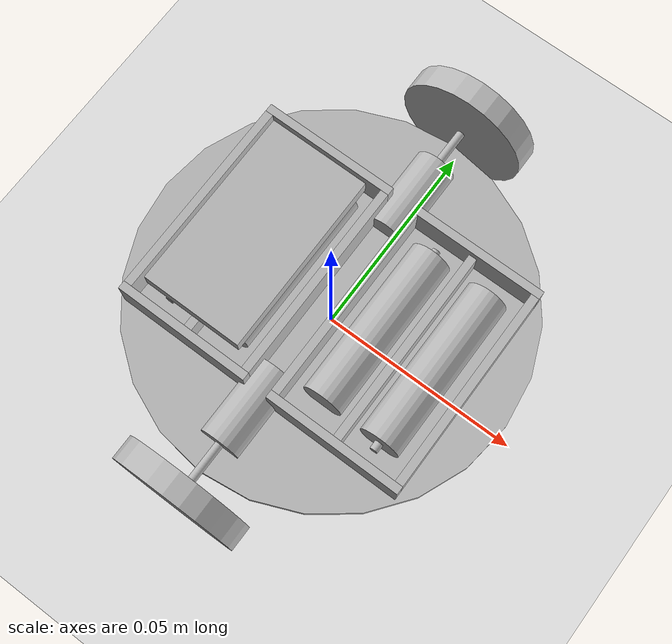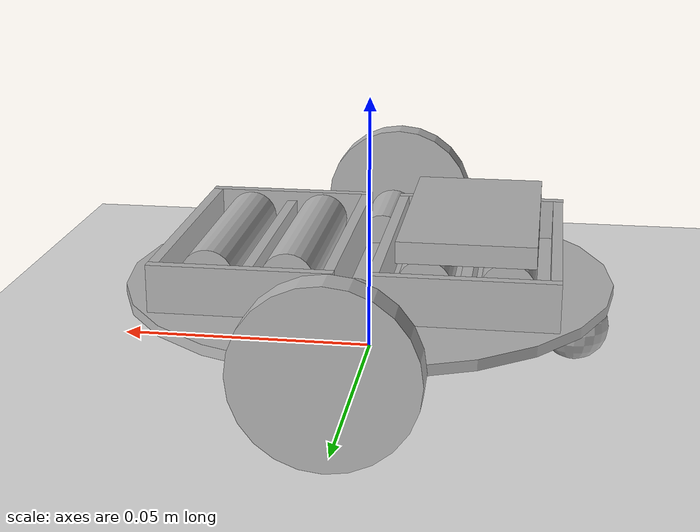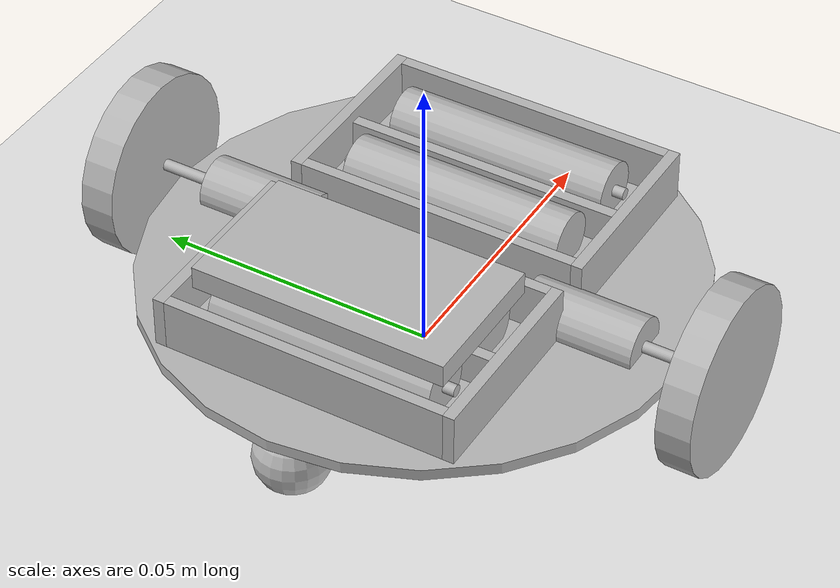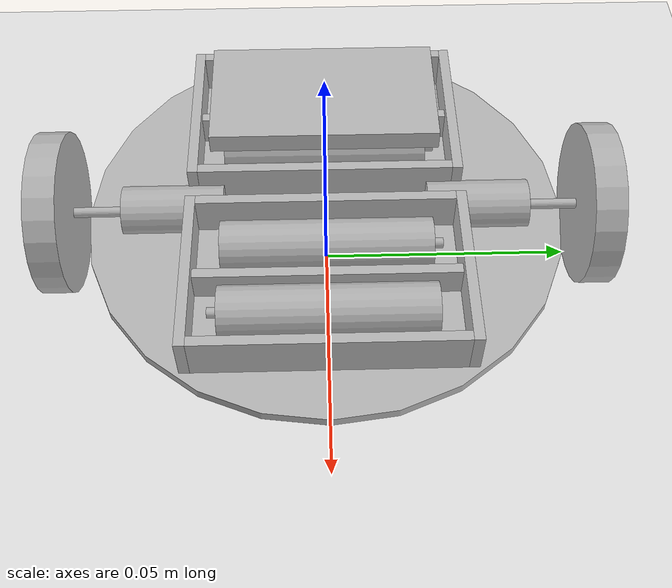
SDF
<?xml version="1.0"?>
<sdf version="1.10">
    <world name="race_tracks_world">
        <physics name="default_physics" type="dart">
            <max_step_size>0.001</max_step_size>
            <real_time_factor>1</real_time_factor>
            <real_time_update_rate>1000</real_time_update_rate>
        </physics>

        <plugin
            filename="gz-sim-physics-system"
            name="gz::sim::systems::Physics">
        </plugin>
        <plugin
            filename="gz-sim-sensors-system"
            name="gz::sim::systems::Sensors">
        </plugin>
        <plugin
            filename="gz-sim-scene-broadcaster-system"
            name="gz::sim::systems::SceneBroadcaster">
        </plugin>
        <plugin
            filename="gz-sim-user-commands-system"
            name="gz::sim::systems::UserCommands">
        </plugin>

        <gui>
        <camera name="observation_camera">
                <view_controller>orbit</view_controller>
                <projection_type>perspective</projection_type>
				<track_visual>
					<name>3pi_robot</name>
					<static>1</static>
					<xyz>-0.01 0 2</xyz>
                    <inherit_yaw>0</inherit_yaw>
				</track_visual>
			</camera>
		</gui>

		<light type="directional" name="sun">
            <cast_shadows>0</cast_shadows>
            <pose>0 0 10 0 0 0</pose>
            <diffuse>0.8 0.8 0.8 1</diffuse>
            <specular>0.2 0.2 0.2 1</specular>
            <attenuation>
                <range>1000</range>
                <constant>0.9</constant>
                <linear>0.01</linear>
                <quadratic>0.001</quadratic>
            </attenuation>
            <direction>-0.5 0.1 -0.9</direction>
        </light>

        <include>
            <uri>model://colored_ground_plane</uri>
        </include>

        <include>
            <uri>model://3pi_robot</uri>
        </include>

        <model name="top_camera">
                <static>1</static>
                <gravity>0</gravity>
                <kinematic>1</kinematic>
                <pose>0 0 0 0 0 0</pose>
                <link name="top_camera_link">
                        <inertial>
                                <mass>1e-12</mass>
                        </inertial>
                        <self_collide>0</self_collide>
                        <sensor name="top_camera" type="camera">
                                <camera>
                                        <horizontal_fov>2.694395</horizontal_fov>
                                        <vertical_fov>2.694395</vertical_fov>
                                        <image>
                                                <height>100</height>
                                                <width>100</width>
                                                <format>R8G8B8</format>
                                        </image>
                                        <clip>
                                                <near>0.001</near>
                                                <far>100.</far>
                                        </clip>
                                </camera>
                                <always_on>1</always_on>
                                <update_rate>30</update_rate>
                                <visualize>1</visualize>
                                <topic>/world/race_tracks_world/top_camera</topic>
                        </sensor>
                </link>
         </model>

    </world>
</sdf>

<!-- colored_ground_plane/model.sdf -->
<sdf version="1.11">
	<model name="colored_ground_plane">
		<static>1</static>
		<pose>0 0 0 0 0 0</pose>
		<link name="link">
			<collision name="collision">
				<geometry>
					<plane>
						<normal>0 0 1</normal>
						<size>100 100</size>
					</plane>
				</geometry>
                                <surface><friction><ode>
                                <mu>10000000</mu>
                                <mu2>10000000</mu2>
                                </ode></friction></surface>
			</collision>
			<visual name="visual">
				<geometry>
					<plane>
						<normal>0 0 1</normal>
						<size>100 100</size>
					</plane>
				</geometry>
				<material>
					<ambient>0.1 0.1 0.1 1</ambient>
					<diffuse>0.9 0.9 0.9 1</diffuse>
					<specular>0.1 0.1 0.1 1</specular>
					<pbr>
						<metal>
	        				<albedo_map>tracks/circles.png</albedo_map>
						</metal>
					</pbr>
				</material>
			</visual>
		</link>
	</model>

</sdf>

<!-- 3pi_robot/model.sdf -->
<sdf version="1.11">
	<model name="3pi_robot">
		<static>0</static>
		<pose>0 0 0 0 0 0</pose>
		<!-- LINKS - LINKS - LINKS -->
		<link name="blade_link">
			<pose>0 0 0.013 0 0 0</pose>
			<inertial>
				<mass>0.005</mass>
				<pose>0 0 0.001 0 0 0</pose>
				<inertia>
					<ixx>2.92e-06</ixx>
					<ixy>0</ixy>
					<ixz>0</ixz>
					<iyy>2.92e-06</iyy>
					<iyz>0</iyz>
					<izz>5.52e-06</izz>
				</inertia>
			</inertial>
			<self_collide>0</self_collide>
			<enable_wind>0</enable_wind>
			<kinematic>0</kinematic>
			<gravity>1</gravity>
			<visual name="body_visual">
				<pose>0 0 0.001 0 0 0</pose>
				<geometry>
					<cylinder>
						<radius>0.047</radius>
						<length>0.002</length>
					</cylinder>
				</geometry>
				<transparency>0</transparency>
				<cast_shadows>1</cast_shadows>
			</visual>
		</link>
		<link name="battery_b_lr_link">
			<pose>-0.0275 0.02 0.02 1.570796 0 0</pose>
			<inertial>
				<mass>0.00756</mass>
				<pose>0 0 0.02 0 0 0</pose>
				<inertia>
					<ixx>1.06e-06</ixx>
					<ixy>0</ixy>
					<ixz>0</ixz>
					<iyy>1.06e-06</iyy>
					<iyz>0</iyz>
					<izz>9.5e-08</izz>
				</inertia>
			</inertial>
			<self_collide>0</self_collide>
			<enable_wind>0</enable_wind>
			<kinematic>0</kinematic>
			<gravity>1</gravity>
			<visual name="body_visual">
				<pose>0 0 0.02 0 0 0</pose>
				<geometry>
					<cylinder>
						<radius>0.005</radius>
						<length>0.04</length>
					</cylinder>
				</geometry>
				<transparency>0</transparency>
				<cast_shadows>1</cast_shadows>
			</visual>
			<visual name="head_visual">
				<pose>0 0 0.041 0 0 0</pose>
				<geometry>
					<cylinder>
						<radius>0.001</radius>
						<length>0.002</length>
					</cylinder>
				</geometry>
				<transparency>0</transparency>
				<cast_shadows>1</cast_shadows>
			</visual>
		</link>
		<link name="battery_b_rl_link">
			<pose>-0.0125 -0.02 0.02 -1.570796 0 0</pose>
			<inertial>
				<mass>0.00756</mass>
				<pose>0 0 0.02 0 0 0</pose>
				<inertia>
					<ixx>1.06e-06</ixx>
					<ixy>0</ixy>
					<ixz>0</ixz>
					<iyy>1.06e-06</iyy>
					<iyz>0</iyz>
					<izz>9.5e-08</izz>
				</inertia>
			</inertial>
			<self_collide>0</self_collide>
			<enable_wind>0</enable_wind>
			<kinematic>0</kinematic>
			<gravity>1</gravity>
			<visual name="body_visual">
				<pose>0 0 0.02 0 0 0</pose>
				<geometry>
					<cylinder>
						<radius>0.005</radius>
						<length>0.04</length>
					</cylinder>
				</geometry>
				<transparency>0</transparency>
				<cast_shadows>1</cast_shadows>
			</visual>
			<visual name="head_visual">
				<pose>0 0 0.041 0 0 0</pose>
				<geometry>
					<cylinder>
						<radius>0.001</radius>
						<length>0.002</length>
					</cylinder>
				</geometry>
				<transparency>0</transparency>
				<cast_shadows>1</cast_shadows>
			</visual>
		</link>
		<link name="box_b_link">
			<pose>-0.02 0 0.014 0 0 1.570796</pose>
			<inertial>
				<mass>0.00101</mass>
				<pose>0 0 0.005 0 0 0</pose>
				<inertia>
					<ixx>1.06e-07</ixx>
					<ixy>0</ixy>
					<ixz>0</ixz>
					<iyy>2.19e-07</iyy>
					<iyz>0</iyz>
					<izz>3.08e-07</izz>
				</inertia>
			</inertial>
			<self_collide>0</self_collide>
			<enable_wind>0</enable_wind>
			<kinematic>0</kinematic>
			<gravity>1</gravity>
			<visual name="front_visual">
				<pose>0 0.016 0.005 0 0 0</pose>
				<geometry>
					<box>
						<size>0.05 0.002 0.01</size>
					</box>
				</geometry>
				<transparency>0</transparency>
				<cast_shadows>1</cast_shadows>
			</visual>
			<visual name="back_visual">
				<pose>0 -0.016 0.005 0 0 0</pose>
				<geometry>
					<box>
						<size>0.05 0.002 0.01</size>
					</box>
				</geometry>
				<transparency>0</transparency>
				<cast_shadows>1</cast_shadows>
			</visual>
			<visual name="bottom_visual">
				<pose>0 0 0.001 0 0 0</pose>
				<geometry>
					<box>
						<size>0.05 0.03 0.002</size>
					</box>
				</geometry>
				<transparency>0</transparency>
				<cast_shadows>1</cast_shadows>
			</visual>
			<visual name="left_visual">
				<pose>-0.026 0 0.005 0 0 0</pose>
				<geometry>
					<box>
						<size>0.002 0.034 0.01</size>
					</box>
				</geometry>
				<transparency>0</transparency>
				<cast_shadows>1</cast_shadows>
			</visual>
			<visual name="middle_visual">
				<pose>0 0 0.005 0 0 0</pose>
				<geometry>
					<box>
						<size>0.05 0.002 0.006</size>
					</box>
				</geometry>
				<transparency>0</transparency>
				<cast_shadows>1</cast_shadows>
			</visual>
			<visual name="right_visual">
				<pose>0.026 0 0.005 0 0 0</pose>
				<geometry>
					<box>
						<size>0.002 0.034 0.01</size>
					</box>
				</geometry>
				<transparency>0</transparency>
				<cast_shadows>1</cast_shadows>
			</visual>
		</link>
		<link name="battery_f_lr_link">
			<pose>0.0275 0.02 0.02 1.570796 0 0</pose>
			<inertial>
				<mass>0.00756</mass>
				<pose>0 0 0.02 0 0 0</pose>
				<inertia>
					<ixx>1.06e-06</ixx>
					<ixy>0</ixy>
					<ixz>0</ixz>
					<iyy>1.06e-06</iyy>
					<iyz>0</iyz>
					<izz>9.5e-08</izz>
				</inertia>
			</inertial>
			<self_collide>0</self_collide>
			<enable_wind>0</enable_wind>
			<kinematic>0</kinematic>
			<gravity>1</gravity>
			<visual name="body_visual">
				<pose>0 0 0.02 0 0 0</pose>
				<geometry>
					<cylinder>
						<radius>0.005</radius>
						<length>0.04</length>
					</cylinder>
				</geometry>
				<transparency>0</transparency>
				<cast_shadows>1</cast_shadows>
			</visual>
			<visual name="head_visual">
				<pose>0 0 0.041 0 0 0</pose>
				<geometry>
					<cylinder>
						<radius>0.001</radius>
						<length>0.002</length>
					</cylinder>
				</geometry>
				<transparency>0</transparency>
				<cast_shadows>1</cast_shadows>
			</visual>
		</link>
		<link name="battery_f_rl_link">
			<pose>0.0125 -0.02 0.02 -1.570796 0 0</pose>
			<inertial>
				<mass>0.00756</mass>
				<pose>0 0 0.02 0 0 0</pose>
				<inertia>
					<ixx>1.06e-06</ixx>
					<ixy>0</ixy>
					<ixz>0</ixz>
					<iyy>1.06e-06</iyy>
					<iyz>0</iyz>
					<izz>9.5e-08</izz>
				</inertia>
			</inertial>
			<self_collide>0</self_collide>
			<enable_wind>0</enable_wind>
			<kinematic>0</kinematic>
			<gravity>1</gravity>
			<visual name="body_visual">
				<pose>0 0 0.02 0 0 0</pose>
				<geometry>
					<cylinder>
						<radius>0.005</radius>
						<length>0.04</length>
					</cylinder>
				</geometry>
				<transparency>0</transparency>
				<cast_shadows>1</cast_shadows>
			</visual>
			<visual name="head_visual">
				<pose>0 0 0.041 0 0 0</pose>
				<geometry>
					<cylinder>
						<radius>0.001</radius>
						<length>0.002</length>
					</cylinder>
				</geometry>
				<transparency>0</transparency>
				<cast_shadows>1</cast_shadows>
			</visual>
		</link>
		<link name="box_f_link">
			<pose>0.02 0 0.014 0 0 -1.570796</pose>
			<inertial>
				<mass>0.00101</mass>
				<pose>0 0 0.005 0 0 0</pose>
				<inertia>
					<ixx>1.06e-07</ixx>
					<ixy>0</ixy>
					<ixz>0</ixz>
					<iyy>2.19e-07</iyy>
					<iyz>0</iyz>
					<izz>3.08e-07</izz>
				</inertia>
			</inertial>
			<self_collide>0</self_collide>
			<enable_wind>0</enable_wind>
			<kinematic>0</kinematic>
			<gravity>1</gravity>
			<visual name="right_visual">
				<pose>0.026 0 0.005 0 0 0</pose>
				<geometry>
					<box>
						<size>0.002 0.034 0.01</size>
					</box>
				</geometry>
				<transparency>0</transparency>
				<cast_shadows>1</cast_shadows>
			</visual>
			<visual name="front_visual">
				<pose>0 0.016 0.005 0 0 0</pose>
				<geometry>
					<box>
						<size>0.05 0.002 0.01</size>
					</box>
				</geometry>
				<transparency>0</transparency>
				<cast_shadows>1</cast_shadows>
			</visual>
			<visual name="bottom_visual">
				<pose>0 0 0.001 0 0 0</pose>
				<geometry>
					<box>
						<size>0.05 0.03 0.002</size>
					</box>
				</geometry>
				<transparency>0</transparency>
				<cast_shadows>1</cast_shadows>
			</visual>
			<visual name="middle_visual">
				<pose>0 0 0.005 0 0 0</pose>
				<geometry>
					<box>
						<size>0.05 0.002 0.006</size>
					</box>
				</geometry>
				<transparency>0</transparency>
				<cast_shadows>1</cast_shadows>
			</visual>
			<visual name="left_visual">
				<pose>-0.026 0 0.005 0 0 0</pose>
				<geometry>
					<box>
						<size>0.002 0.034 0.01</size>
					</box>
				</geometry>
				<transparency>0</transparency>
				<cast_shadows>1</cast_shadows>
			</visual>
			<visual name="back_visual">
				<pose>0 -0.016 0.005 0 0 0</pose>
				<geometry>
					<box>
						<size>0.05 0.002 0.01</size>
					</box>
				</geometry>
				<transparency>0</transparency>
				<cast_shadows>1</cast_shadows>
			</visual>
		</link>
		<link name="caster_link">
			<pose>-0.04 0 0 0 0 0</pose>
			<inertial>
				<mass>0.00144</mass>
				<pose>0 0 0.0065 0 0 0</pose>
				<inertia>
					<ixx>2.4e-08</ixx>
					<ixy>0</ixy>
					<ixz>0</ixz>
					<iyy>2.4e-08</iyy>
					<iyz>0</iyz>
					<izz>2.4e-08</izz>
				</inertia>
			</inertial>
			<self_collide>0</self_collide>
			<enable_wind>0</enable_wind>
			<kinematic>0</kinematic>
			<gravity>1</gravity>
			<visual name="body_visual">
				<pose>0 0 0.0065 0 0 0</pose>
				<geometry>
					<sphere>
						<radius>0.0065</radius>
					</sphere>
				</geometry>
				<transparency>0</transparency>
				<cast_shadows>1</cast_shadows>
			</visual>
			<collision name="body_collision">
				<laser_retro>0</laser_retro>
				<max_contacts>10</max_contacts>
				<pose>0 0 0.0065 0 0 0</pose>
				<geometry>
					<sphere>
						<radius>0.0065</radius>
					</sphere>
				</geometry>
				<surface>
					<friction>
						<ode>
							<mu>1</mu>
							<mu2>0.5</mu2>
							<fdir1>0 0 0</fdir1>
							<slip1>0</slip1>
							<slip2>0</slip2>
						</ode>
						<torsional>
							<coefficient>0.75</coefficient>
							<use_patch_radius>0</use_patch_radius>
							<surface_radius>0.0065</surface_radius>
							<ode>
								<slip>0</slip>
							</ode>
						</torsional>
					</friction>
					<contact>
						<ode>
							<soft_cfm>0</soft_cfm>
							<soft_erp>0.2</soft_erp>
							<kp>1e+13</kp>
							<kd>1</kd>
							<max_vel>1</max_vel>
							<min_depth>0.001</min_depth>
						</ode>
					</contact>
				</surface>
			</collision>
		</link>
		<link name="wheel_l_link">
			<pose>0 -0.05 0.016 1.570796 0 0</pose>
			<inertial>
				<mass>0.00311</mass>
				<pose>0 0 0.003 0 0 0</pose>
				<inertia>
					<ixx>2.08e-07</ixx>
					<ixy>0</ixy>
					<ixz>0</ixz>
					<iyy>2.08e-07</iyy>
					<iyz>0</iyz>
					<izz>3.98e-07</izz>
				</inertia>
			</inertial>
			<self_collide>0</self_collide>
			<enable_wind>0</enable_wind>
			<kinematic>0</kinematic>
			<gravity>1</gravity>
			<visual name="body_visual">
				<pose>0 0 0.003 0 0 0</pose>
				<geometry>
					<cylinder>
						<radius>0.016</radius>
						<length>0.006</length>
					</cylinder>
				</geometry>
				<transparency>0</transparency>
				<cast_shadows>1</cast_shadows>
			</visual>
			<collision name="body_collision">
				<laser_retro>0</laser_retro>
				<max_contacts>10</max_contacts>
				<pose>0 0 0.003 0 0 0</pose>
				<geometry>
					<cylinder>
						<radius>0.016</radius>
						<length>0.006</length>
					</cylinder>
				</geometry>
				<surface>
					<friction>
						<ode>
							<mu>20000000</mu>
							<mu2>10000000</mu2>
							<slip1>0</slip1>
							<slip2>0</slip2>
						</ode>
						<torsional>
							<coefficient>15</coefficient>
							<use_patch_radius>0</use_patch_radius>
							<surface_radius>0.016</surface_radius>
							<ode>
								<slip>0</slip>
							</ode>
						</torsional>
					</friction>
					<contact>
						<ode>
							<soft_cfm>0</soft_cfm>
							<soft_erp>0.2</soft_erp>
							<kp>1e+13</kp>
							<kd>1</kd>
							<max_vel>1</max_vel>
							<min_depth>0.001</min_depth>
						</ode>
					</contact>
				</surface>
			</collision>
		</link>
		<link name="motor_l_link">
			<pose>0 -0.02 0.016 1.570796 0 0</pose>
			<inertial>
				<mass>0.03158</mass>
				<pose>0 0 0.01 0 0 0</pose>
				<inertia>
					<ixx>1.25e-06</ixx>
					<ixy>0</ixy>
					<ixz>0</ixz>
					<iyy>1.25e-06</iyy>
					<iyz>0</iyz>
					<izz>3.95e-07</izz>
				</inertia>
			</inertial>
			<self_collide>0</self_collide>
			<enable_wind>0</enable_wind>
			<kinematic>0</kinematic>
			<gravity>1</gravity>
			<visual name="body_visual">
				<pose>0 0 0.01 0 0 0</pose>
				<geometry>
					<cylinder>
						<radius>0.005</radius>
						<length>0.02</length>
					</cylinder>
				</geometry>
				<transparency>0</transparency>
				<cast_shadows>1</cast_shadows>
			</visual>
			<visual name="axis_visual">
				<pose>0 0 0.025 0 0 0</pose>
				<geometry>
					<cylinder>
						<radius>0.001</radius>
						<length>0.01</length>
					</cylinder>
				</geometry>
				<transparency>0</transparency>
				<cast_shadows>1</cast_shadows>
			</visual>
		</link>
		<link name="wheel_r_link">
			<pose>0 0.05 0.016 -1.570796 0 0</pose>
			<inertial>
				<mass>0.00311</mass>
				<pose>0 0 0.003 0 0 0</pose>
				<inertia>
					<ixx>2.08e-07</ixx>
					<ixy>0</ixy>
					<ixz>0</ixz>
					<iyy>2.08e-07</iyy>
					<iyz>0</iyz>
					<izz>3.98e-07</izz>
				</inertia>
			</inertial>
			<self_collide>0</self_collide>
			<enable_wind>0</enable_wind>
			<kinematic>0</kinematic>
			<gravity>1</gravity>
			<visual name="body_visual">
				<pose>0 0 0.003 0 0 0</pose>
				<geometry>
					<cylinder>
						<radius>0.016</radius>
						<length>0.006</length>
					</cylinder>
				</geometry>
				<transparency>0</transparency>
				<cast_shadows>1</cast_shadows>
			</visual>
			<collision name="body_collision">
				<laser_retro>0</laser_retro>
				<max_contacts>10</max_contacts>
				<pose>0 0 0.003 0 0 0</pose>
				<geometry>
					<cylinder>
						<radius>0.016</radius>
						<length>0.006</length>
					</cylinder>
				</geometry>
				<surface>
					<friction>
						<ode>
							<mu>2000000</mu>
							<mu2>1000000</mu2>
							<slip1>0</slip1>
							<slip2>0</slip2>
						</ode>
						<torsional>
							<coefficient>15</coefficient>
							<use_patch_radius>0</use_patch_radius>
							<surface_radius>0.016</surface_radius>
							<ode>
								<slip>0</slip>
							</ode>
						</torsional>
					</friction>
					<contact>
						<ode>
							<soft_cfm>0</soft_cfm>
							<soft_erp>0.2</soft_erp>
							<kp>1e+13</kp>
							<kd>1</kd>
							<max_vel>1</max_vel>
							<min_depth>0.001</min_depth>
						</ode>
					</contact>
				</surface>
			</collision>
		</link>
		<link name="motor_r_link">
			<pose>0 0.02 0.016 -1.570796 0 0</pose>
			<inertial>
				<mass>0.03158</mass>
				<pose>0 0 0.01 0 0 0</pose>
				<inertia>
					<ixx>1.25e-06</ixx>
					<ixy>0</ixy>
					<ixz>0</ixz>
					<iyy>1.25e-06</iyy>
					<iyz>0</iyz>
					<izz>3.95e-07</izz>
				</inertia>
			</inertial>
			<self_collide>0</self_collide>
			<enable_wind>0</enable_wind>
			<kinematic>0</kinematic>
			<gravity>1</gravity>
			<visual name="body_visual">
				<pose>0 0 0.01 0 0 0</pose>
				<geometry>
					<cylinder>
						<radius>0.005</radius>
						<length>0.02</length>
					</cylinder>
				</geometry>
				<transparency>0</transparency>
				<cast_shadows>1</cast_shadows>
			</visual>
			<visual name="axis_visual">
				<pose>0 0 0.025 0 0 0</pose>
				<geometry>
					<cylinder>
						<radius>0.001</radius>
						<length>0.01</length>
					</cylinder>
				</geometry>
				<transparency>0</transparency>
				<cast_shadows>1</cast_shadows>
			</visual>
		</link>
		<link name="display_link">
			<pose>-0.02 0 0.025 0 0 1.570796</pose>
			<inertial>
				<mass>0.01164</mass>
				<pose>0 0 0.002 0 0 0</pose>
				<inertia>
					<ixx>6.22e-07</ixx>
					<ixy>0</ixy>
					<ixz>0</ixz>
					<iyy>1.98e-06</iyy>
					<iyz>0</iyz>
					<izz>2.57e-06</izz>
				</inertia>
			</inertial>
			<self_collide>0</self_collide>
			<enable_wind>0</enable_wind>
			<kinematic>0</kinematic>
			<gravity>1</gravity>
			<visual name="body_visual">
				<pose>0 0 0.002 0 0 0</pose>
				<geometry>
					<box>
						<size>0.045 0.025 0.004</size>
					</box>
				</geometry>
				<transparency>0</transparency>
				<cast_shadows>1</cast_shadows>
			</visual>
		</link>
		<link name="line_camera_link">
			<pose>0.04 0 0.013 0 1.570796 0</pose>
			<inertial>
				<mass>1e-12</mass>
			</inertial>
			<self_collide>0</self_collide>
			<sensor name="camera" type="camera">
				<camera>
					<horizontal_fov>3</horizontal_fov>
					<image>
						<height>4</height>
						<width>100</width>
						<format>R8G8B8</format>
					</image>
					<clip>
						<near>0.001</near>
						<far>1</far>
					</clip>
				</camera>
				<always_on>1</always_on>
				<update_rate>30</update_rate>
				<visualize>1</visualize>
				<topic>/vehicle/camera</topic>
			</sensor>
		</link>

		<!-- JOINTS - JOINTS - JOINTS -->
		<joint name="battery_b_lr_joint" type="fixed">
			<parent>box_b_link</parent>
			<child>battery_b_lr_link</child>
			<pose>0 0 0 0 0 0</pose>
			<physics>
				<ode>
					<limit>
						<cfm>0</cfm>
						<erp>0.2</erp>
					</limit>
					<suspension>
						<cfm>0</cfm>
						<erp>0.2</erp>
					</suspension>
				</ode>
			</physics>
		</joint>
		<joint name="battery_b_rl_joint" type="fixed">
			<parent>box_b_link</parent>
			<child>battery_b_rl_link</child>
			<pose>0 0 0 0 0 0</pose>
			<physics>
				<ode>
					<limit>
						<cfm>0</cfm>
						<erp>0.2</erp>
					</limit>
					<suspension>
						<cfm>0</cfm>
						<erp>0.2</erp>
					</suspension>
				</ode>
			</physics>
		</joint>
		<joint name="battery_f_lr_joint" type="fixed">
			<parent>box_f_link</parent>
			<child>battery_f_lr_link</child>
			<pose>0 0 0 0 0 0</pose>
			<physics>
				<ode>
					<limit>
						<cfm>0</cfm>
						<erp>0.2</erp>
					</limit>
					<suspension>
						<cfm>0</cfm>
						<erp>0.2</erp>
					</suspension>
				</ode>
			</physics>
		</joint>
		<joint name="box_b_joint" type="fixed">
			<parent>blade_link</parent>
			<child>box_b_link</child>
			<pose>0 0 0 0 0 0</pose>
			<physics>
				<ode>
					<limit>
						<cfm>0</cfm>
						<erp>0.2</erp>
					</limit>
					<suspension>
						<cfm>0</cfm>
						<erp>0.2</erp>
					</suspension>
				</ode>
			</physics>
		</joint>
		<joint name="battery_f_rl_joint" type="fixed">
			<parent>box_f_link</parent>
			<child>battery_f_rl_link</child>
			<pose>0 0 0 0 0 0</pose>
			<physics>
				<ode>
					<limit>
						<cfm>0</cfm>
						<erp>0.2</erp>
					</limit>
					<suspension>
						<cfm>0</cfm>
						<erp>0.2</erp>
					</suspension>
				</ode>
			</physics>
		</joint>
		<joint name="box_f_joint" type="fixed">
			<parent>blade_link</parent>
			<child>box_f_link</child>
			<pose>0 0 0 0 0 0</pose>
			<physics>
				<ode>
					<limit>
						<cfm>0</cfm>
						<erp>0.2</erp>
					</limit>
					<suspension>
						<cfm>0</cfm>
						<erp>0.2</erp>
					</suspension>
				</ode>
			</physics>
		</joint>
		<joint name="caster_joint" type="ball">
			<parent>blade_link</parent>
			<child>caster_link</child>
			<pose>0 0 0.0065 0 0 0</pose>
			<physics>
				<ode>
					<limit>
						<cfm>0</cfm>
						<erp>0.2</erp>
					</limit>
					<suspension>
						<cfm>0</cfm>
						<erp>0.2</erp>
					</suspension>
				</ode>
			</physics>
		</joint>
		<joint name="left_axis_joint" type="revolute">
			<parent>blade_link</parent>
			<child>wheel_l_link</child>
			<pose>0 0 0 0 0 0</pose>
			<axis>
				<xyz>0 0 -1</xyz>
			</axis>
			<physics>
				<ode>
					<cfm>0</cfm>
					<erp>0.2</erp>
					<limit>
						<cfm>0</cfm>
						<erp>0.2</erp>
					</limit>
					<suspension>
						<cfm>0</cfm>
						<erp>0.2</erp>
					</suspension>
				</ode>
			</physics>
		</joint>
		<joint name="motor_l_joint" type="fixed">
			<parent>blade_link</parent>
			<child>motor_l_link</child>
			<pose>0 0 0 0 0 0</pose>
		</joint>
		<joint name="right_axis_joint" type="revolute">
			<parent>blade_link</parent>
			<child>wheel_r_link</child>
			<pose>0 0 0 0 0 0</pose>
			<axis>
				<xyz>0 0 1</xyz>
			</axis>
			<physics>
				<ode>
					<cfm>0</cfm>
					<erp>0.2</erp>
					<limit>
						<cfm>0</cfm>
						<erp>0.2</erp>
					</limit>
					<suspension>
						<cfm>0</cfm>
						<erp>0.2</erp>
					</suspension>
				</ode>
			</physics>
		</joint>
		<joint name="motor_r_joint" type="fixed">
			<parent>blade_link</parent>
			<child>motor_r_link</child>
			<pose>0 0 0 0 0 0</pose>
		</joint>
		<joint name="display_joint" type="fixed">
			<parent>box_b_link</parent>
			<child>display_link</child>
			<pose>0 0 0 0 0 0</pose>
		</joint>
		<joint name="line_camera_joint" type="fixed">
			<parent>blade_link</parent>
			<child>line_camera_link</child>
			<pose>0 0 0 0 0 0</pose>
		</joint>

		<!-- PLUGINS - PLUGINS - PLUGINS -->
		<plugin filename="gz-sim-diff-drive-system" name="gz::sim::systems::DiffDrive">
			<topic>/vehicle/motor</topic>
			<left_joint>left_axis_joint</left_joint>
			<right_joint>right_axis_joint</right_joint>
			<wheel_separation>0.1</wheel_separation>
			<wheel_radius>0.016</wheel_radius>
			<min_velocity>-1.0</min_velocity>
			<max_velocity>+1.0</max_velocity>
			<min_acceleration>-100000000.5</min_acceleration>
			<max_acceleration>+100000000.5</max_acceleration>
			<min_jerk>-100000000000.0</min_jerk>
			<max_jerk>+100000000000.0</max_jerk>
			<odom_topic>/vehicle/odo</odom_topic>
			<odom_publish_frequency>5</odom_publish_frequency>
		</plugin>
	</model>
</sdf>
